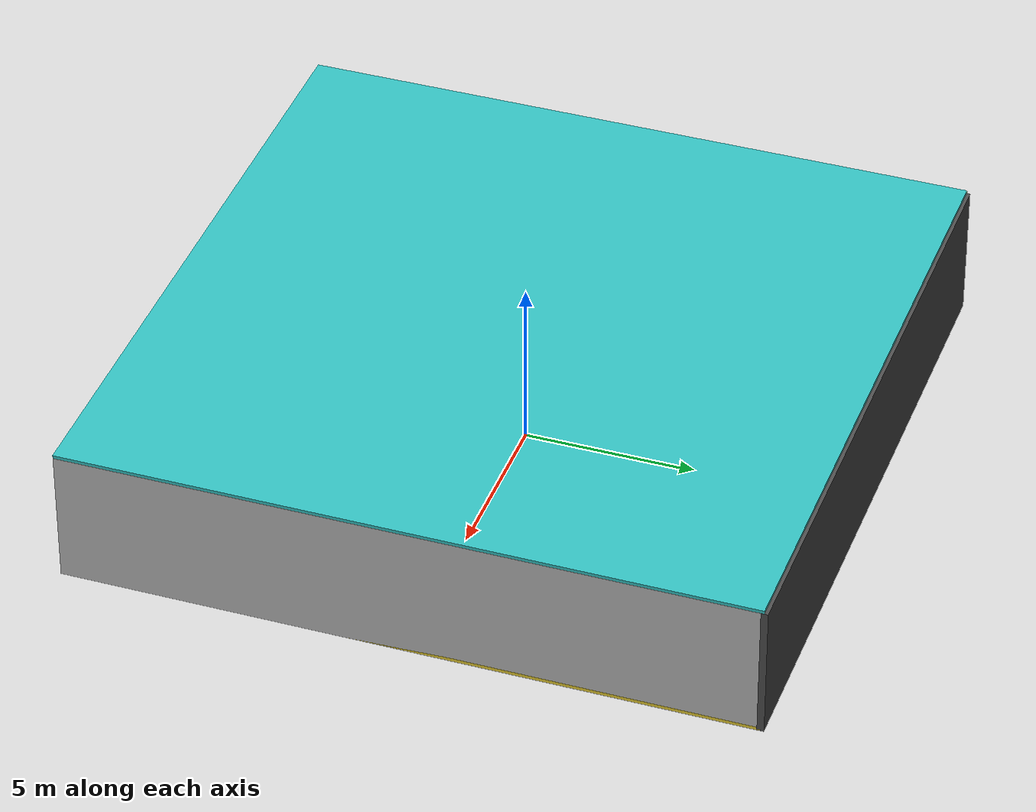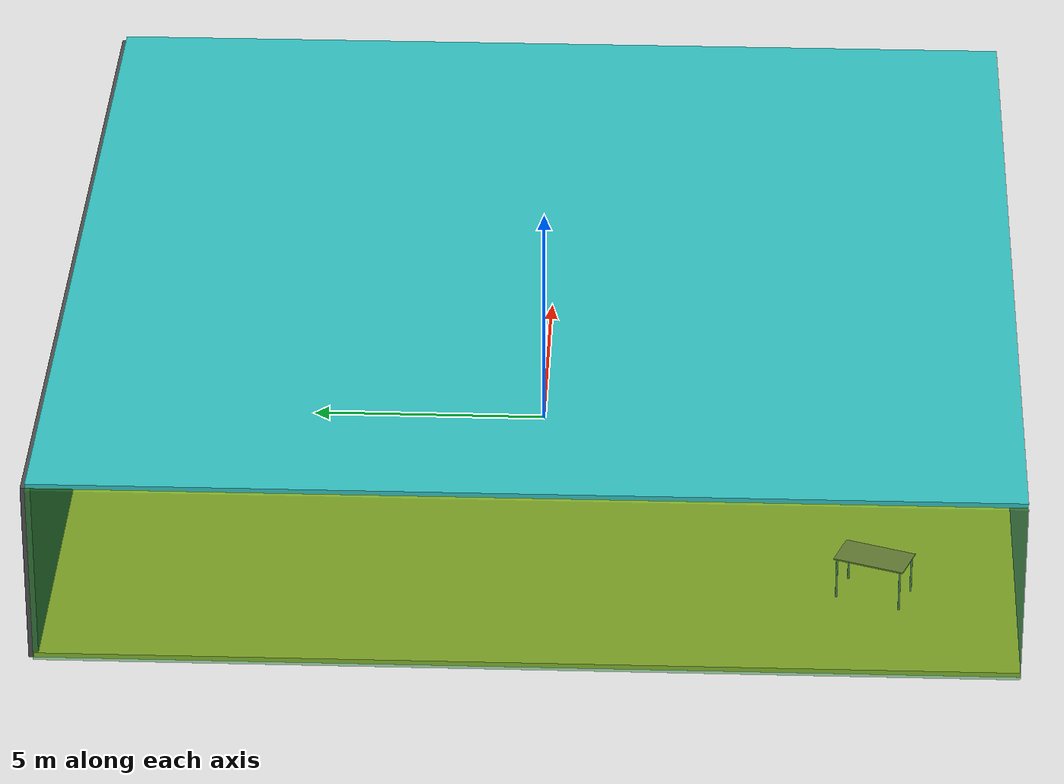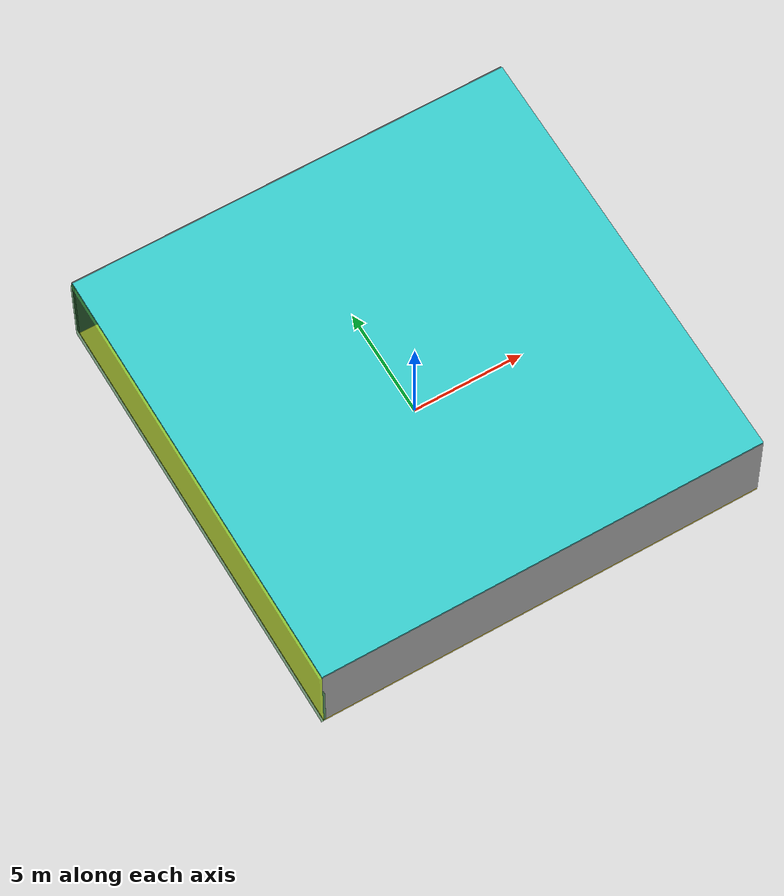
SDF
<sdf version="1.4">
 <world name="default">
  <physics type="ode">
   <max_step_size>0.001</max_step_size>
   <real_time_factor>1</real_time_factor>
   <real_time_update_rate>1000</real_time_update_rate>
   <gravity>0 0 -9.8</gravity>
  </physics>
  <scene><ambient>0.4 0.4 0.4 1</ambient><background>0.7 0.7 0.7 1</background><shadows>1</shadows></scene>
  <model name="Surrounding">
   <static>1</static>
   <link name="Ceiling">
    <collision name="Ceiling_Collision"><geometry><box><size>20 20 0.1</size></box></geometry></collision>
    <visual name="Ceiling_Visual">
     <geometry><box><size>20 20 0.1</size></box></geometry>
     <material>
      <script><uri>file://media/materials/scripts/gazebo.material</uri><name>Gazebo/TurquoiseGlow</name></script>
     </material>
    </visual>
    <pose>0 0 4.05 0 0 0</pose>
   </link>
   <link name="Wall_South">
    <collision name="Wall_South_Collision">
     <geometry><box><size>20 0 4</size></box></geometry>
     <pose>0 0 2 0 -0 0</pose>
    </collision>
    <visual name="Wall_South_Visual">
     <pose>0 0 2 0 -0 0</pose>
     <geometry><box><size>20 0 4</size></box></geometry>
     <material>
      <script><uri>file://media/materials/scripts/gazebo.material</uri><name>Gazebo/PioneerBody</name></script>
     </material>
    </visual>
    <velocity_decay><linear>0</linear><angular>0</angular></velocity_decay>
    <pose>0 -10 0 0 -0 0</pose>
   </link>
   <link name="Wall_East">
    <collision name="Wall_21_Collision">
     <geometry><box><size>20 0 4</size></box></geometry>
     <pose>0 0 2 0 -0 0</pose>
    </collision>
    <visual name="Wall_21_Visual">
     <pose>0 0 2 0 -0 0</pose>
     <geometry><box><size>20 0 4</size></box></geometry>
     <material>
      <script><uri>file://media/materials/scripts/gazebo.material</uri><name>Gazebo/Pioneer2Body</name></script>
     </material>
    </visual>
    <velocity_decay><linear>0</linear><angular>0</angular></velocity_decay>
    <pose>10 0 0 0 -0 1.5708</pose>
   </link>
   <link name="Wall_North">
    <collision name="Wall_22_Collision">
     <geometry><box><size>20 0.2 4</size></box></geometry>
     <pose>0 0 2 0 -0 0</pose>
    </collision>
    <visual name="Wall_22_Visual">
     <pose>0 0 2 0 -0 0</pose>
     <geometry><box><size>20 0.2 4</size></box></geometry>
     <material>
      <script><uri>file://media/materials/scripts/gazebo.material</uri><name>Gazebo/Road</name></script>
     </material>
    </visual>
    <velocity_decay><linear>0</linear><angular>0</angular></velocity_decay>
    <pose>0 10 0 0 -0 0</pose>
   </link>
   <link name="Wall_West">
    <collision name="Wall_23_Collision">
     <geometry><box><size>20 0.2 4</size></box></geometry>
     <pose>0 0 2 0 -0 0</pose>
    </collision>
    <visual name="Wall_23_Visual">
     <pose>0 0 2 0 -0 0</pose>
     <geometry><box><size>20 0.2 4</size></box></geometry>
     <material>
      <script><uri>file://media/materials/scripts/gazebo.material</uri><name>Gazebo/GreenTransparent</name></script>
     </material>
    </visual>
    <velocity_decay><linear>0</linear><angular>0</angular></velocity_decay>
    <pose>-10 0 0 0 0 -1.5708</pose>
   </link>
   <link name="Ground_link">
    <collision name="collision">
     <pose>0 0 .05 0 -0 0</pose>
     <geometry><box><size>20 20 0.1</size></box></geometry>
    </collision>
    <visual name="visual">
     <pose>0 0 .05 0 -0 0</pose>
     <geometry><box><size>20 20 0.1</size></box></geometry>
     <material>
      <script><uri>file://media/materials/scripts/gazebo.material</uri><name>Gazebo/ZincYellow</name></script>
     </material>
    </visual>
   </link>
   <static>1</static>
  </model>
  <spherical_coordinates>
   <surface_model>EARTH_WGS84</surface_model>
   <latitude_deg>0</latitude_deg>
   <longitude_deg>0</longitude_deg>
   <elevation>0</elevation>
   <heading_deg>0</heading_deg>
  </spherical_coordinates>
  <light name="lightball_0" type="diffuse">
   <diffuse>0.8 0.8 0.8 1</diffuse>
   <specular>0.2 0.2 0.2 1</specular>
   <attenuation>
    <range>100</range>
    <constant>0.7</constant>
    <linear>0.01</linear>
    <quadratic>0.001</quadratic>
   </attenuation>
   <direction>-0.5 0.1 -0.9</direction>
   <pose>7.81803932237 -5.09842643836 1.38527106336 0 0 0</pose>
  </light>
  <light name="lightball_1" type="diffuse">
   <diffuse>0.8 0.8 0.8 1</diffuse>
   <specular>0.2 0.2 0.2 1</specular>
   <attenuation>
    <range>100</range>
    <constant>0.7</constant>
    <linear>0.01</linear>
    <quadratic>0.001</quadratic>
   </attenuation>
   <direction>-0.5 0.1 -0.9</direction>
   <pose>-3.08875323624 6.60419614571 0.601638124583 0 0 0</pose>
  </light>
  <light name="lightball_2" type="diffuse">
   <diffuse>0.8 0.8 0.8 1</diffuse>
   <specular>0.2 0.2 0.2 1</specular>
   <attenuation>
    <range>100</range>
    <constant>0.7</constant>
    <linear>0.01</linear>
    <quadratic>0.001</quadratic>
   </attenuation>
   <direction>-0.5 0.1 -0.9</direction>
   <pose>4.01984529843 1.44461231947 3.6859811733 0 0 0</pose>
  </light>
  <light name="lightball_3" type="diffuse">
   <diffuse>0.8 0.8 0.8 1</diffuse>
   <specular>0.2 0.2 0.2 1</specular>
   <attenuation>
    <range>100</range>
    <constant>0.7</constant>
    <linear>0.01</linear>
    <quadratic>0.001</quadratic>
   </attenuation>
   <direction>-0.5 0.1 -0.9</direction>
   <pose>-2.67900214134 -0.39490717451 3.04893533059 0 0 0</pose>
  </light>
  <include><uri>model://table</uri><pose>-7.10605366026 -7.07065736316 0 0 0 1.22477535806</pose></include>
  <include>
   <uri>model://textured_shapes</uri>
   <pose>2.12757041132 -1.87949777296 0 0 0 2.87935297785</pose>
  </include>
  <include>
   <uri>model://construction_cone</uri>
   <pose>2.09125272291 1.01974146464 0 0 0 2.70642982854</pose>
  </include>
  <include>
   <uri>model://robocup_3Dsim_goal</uri>
   <pose>3.91734366343 7.58816915832 0 0 0 2.69964799827</pose>
  </include>
  <include>
   <uri>model://textured_shapes</uri>
   <pose>8.17379053346 1.80425583032 0 0 0 2.99411262132</pose>
  </include>
  <include><uri>model://cabinet</uri><pose>7.6343126562 7.15127769208 0 0 0 1.34991661026</pose></include>
 </world>
</sdf>

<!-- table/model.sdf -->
<sdf version="1.5">
  <model name="table">
    <static>true</static>
    <link name="link">
      <collision name="surface">
        <pose>0 0 1.0 0 0 0</pose>
        <geometry>
          <box>
            <size>1.5 0.8 0.03</size>
          </box>
        </geometry>
        <surface>
          <friction>
            <ode>
              <mu>0.6</mu>
              <mu2>0.6</mu2>
            </ode>
          </friction>
        </surface>
      </collision>
      <visual name="visual1">
        <pose>0 0 1.0 0 0 0</pose>
        <geometry>
          <box>
            <size>1.5 0.8 0.03</size>
          </box>
        </geometry>
        <material>
          <script>
            <uri>model://media/materials/scripts/gazebo.material</uri>
            <name>Gazebo/Wood</name>
          </script>
        </material>
      </visual>
      <collision name="front_left_leg">
        <pose>0.68 0.38 0.5 0 0 0</pose>
        <geometry>
          <cylinder>
            <radius>0.02</radius>
            <length>1.0</length>
          </cylinder>
        </geometry>
      </collision>
      <visual name="front_left_leg">
        <pose>0.68 0.38 0.5 0 0 0</pose>
        <geometry>
          <cylinder>
            <radius>0.02</radius>
            <length>1.0</length>
          </cylinder>
        </geometry>
        <material>
          <script>
            <uri>model://media/materials/scripts/gazebo.material</uri>
            <name>Gazebo/Grey</name>
          </script>
        </material>
      </visual>
      <collision name="front_right_leg">
        <pose>0.68 -0.38 0.5 0 0 0</pose>
        <geometry>
          <cylinder>
            <radius>0.02</radius>
            <length>1.0</length>
          </cylinder>
        </geometry>
      </collision>
      <visual name="front_right_leg">
        <pose>0.68 -0.38 0.5 0 0 0</pose>
        <geometry>
          <cylinder>
            <radius>0.02</radius>
            <length>1.0</length>
          </cylinder>
        </geometry>
        <material>
          <script>
            <uri>model://media/materials/scripts/gazebo.material</uri>
            <name>Gazebo/Grey</name>
          </script>
        </material>
      </visual>
      <collision name="back_right_leg">
        <pose>-0.68 -0.38 0.5 0 0 0</pose>
        <geometry>
          <cylinder>
            <radius>0.02</radius>
            <length>1.0</length>
          </cylinder>
        </geometry>
      </collision>
      <visual name="back_right_leg">
        <pose>-0.68 -0.38 0.5 0 0 0</pose>
        <geometry>
          <cylinder>
            <radius>0.02</radius>
            <length>1.0</length>
          </cylinder>
        </geometry>
        <material>
          <script>
            <uri>model://media/materials/scripts/gazebo.material</uri>
            <name>Gazebo/Grey</name>
          </script>
        </material>
      </visual>
      <collision name="back_left_leg">
        <pose>-0.68 0.38 0.5 0 0 0</pose>
        <geometry>
          <cylinder>
            <radius>0.02</radius>
            <length>1.0</length>
          </cylinder>
        </geometry>
      </collision>
      <visual name="back_left_leg">
        <pose>-0.68 0.38 0.5 0 0 0</pose>
        <geometry>
          <cylinder>
            <radius>0.02</radius>
            <length>1.0</length>
          </cylinder>
        </geometry>
        <material>
          <script>
            <uri>model://media/materials/scripts/gazebo.material</uri>
            <name>Gazebo/Grey</name>
          </script>
        </material>
      </visual>
    </link>
  </model>
</sdf>

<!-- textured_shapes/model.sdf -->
<sdf version="1.6">
  <model name="textured_shapes">
    <pose>0 0 0.5 0 0 0</pose>
    <link name="box">
      <pose>0 -1.5 0 0 0 0</pose>
      <collision name="collision">
        <geometry>
          <box>
            <size>1 1 1</size>
          </box>
        </geometry>
      </collision>
      <visual name="visual">
        <geometry>
          <box>
            <size>1 1 1</size>
          </box>
        </geometry>
        <material>
          <script>
            <uri>model://../model_source/models/textured_shapes/materials/scripts</uri>
            <uri>model://../model_source/models/textured_shapes/materials/textures</uri>
            <name>TexturedShape/Squares</name>
          </script>
        </material>
      </visual>
    </link>
    <link name="sphere">
      <collision name="collision">
        <geometry>
          <sphere>
            <radius>0.5</radius>
          </sphere>
        </geometry>
      </collision>
      <visual name="visual">
        <geometry>
          <sphere>
            <radius>0.5</radius>
          </sphere>
        </geometry>
        <material>
          <script>
            <uri>model://../model_source/models/textured_shapes/materials/scripts</uri>
            <uri>model://../model_source/models/textured_shapes/materials/textures</uri>
            <name>TexturedShape/Squares</name>
          </script>
        </material>
      </visual>
    </link>
    <link name="cylinder">
      <pose>0 1.5 0 0 0 0</pose>
      <collision name="collision">
        <geometry>
          <cylinder>
            <radius>0.5</radius>
            <length>1</length>
          </cylinder>
        </geometry>
      </collision>
      <visual name="visual">
        <geometry>
          <cylinder>
            <radius>0.5</radius>
            <length>1</length>
          </cylinder>
        </geometry>
        <material>
          <script>
            <uri>model://../model_source/models/textured_shapes/materials/scripts</uri>
            <uri>model://../model_source/models/textured_shapes/materials/textures</uri>
            <name>TexturedShape/Squares</name>
          </script>
        </material>
      </visual>
    </link>
  </model>
</sdf>

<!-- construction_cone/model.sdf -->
<sdf version="1.5">
  <model name="Construction Cone">
    <link name="link">
      <collision name="collision">
        <geometry>
          <mesh>
            <scale>10 10 10</scale>
            <uri>file://isr-testbed/construction_cone/meshes/construction_cone.dae</uri>
          </mesh>
        </geometry>
      </collision>
      <visual name="visual">
        <geometry>
          <mesh>
            <scale>10 10 10</scale>
            <uri>file://isr-testbed/construction_cone/meshes/construction_cone.dae</uri>
          </mesh>
        </geometry>
      </visual>
    </link>
  </model>
</sdf>

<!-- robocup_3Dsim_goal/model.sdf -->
<sdf version="1.5">
  <model name="robocup_3d_goal">
    <static>true</static>
    <link name="left_post">
      <pose>0 1.05 0.45 0 0 0</pose>
      <collision name="collision">
        <geometry>
          <cylinder>
            <radius>0.05</radius>
            <length>0.9</length>
          </cylinder>
        </geometry>
      </collision>
      <visual name="visual">
        <geometry>
          <cylinder>
            <radius>0.05</radius>
            <length>0.9</length>
          </cylinder>
        </geometry>
        <material>
          <script>
            <uri>file://media/materials/scripts/gazebo.material</uri>
            <name>Gazebo/ZincYellow</name>
          </script>
        </material>
      </visual>
    </link>
    <link name="left_support_horiz_lower">
      <pose>0.30 1.05 0.01 0 0 0</pose>
      <collision name="collision">
        <geometry>
          <box>
            <size>0.50 0.02 0.02</size>
          </box>
        </geometry>
      </collision>
      <visual name="visual">
        <geometry>
          <box>
            <size>0.50 0.02 0.02</size>
          </box>
        </geometry>
        <material>
          <script>
            <uri>file://media/materials/scripts/gazebo.material</uri>
            <name>Gazebo/White</name>
          </script>
        </material>
      </visual>
    </link>
    <link name="left_support_horiz_upper">
      <pose>0.30 1.05 0.79 0 0 0</pose>
      <collision name="collision">
        <geometry>
          <box>
            <size>0.50 0.02 0.02</size>
          </box>
        </geometry>
      </collision>
      <visual name="visual">
        <geometry>
          <box>
            <size>0.50 0.02 0.02</size>
          </box>
        </geometry>
        <material>
          <script>
            <uri>file://media/materials/scripts/gazebo.material</uri>
            <name>Gazebo/White</name>
          </script>
        </material>
      </visual>
    </link>
    <link name="left_support_vertical">
      <pose>0.56 1.05 0.4 0 1.5708 0</pose>
      <collision name="collision">
        <geometry>
          <box>
            <size>0.80 0.02 0.02</size>
          </box>
        </geometry>
      </collision>
      <visual name="visual">
        <geometry>
          <box>
            <size>0.80 0.02 0.02</size>
          </box>
        </geometry>
        <material>
          <script>
            <uri>file://media/materials/scripts/gazebo.material</uri>
            <name>Gazebo/White</name>
          </script>
        </material>
      </visual>
    </link>
    <link name="right_support_horiz_lower">
      <pose>0.30 -1.05 0.01 0 0 0</pose>
      <collision name="collision">
        <geometry>
          <box>
            <size>0.50 0.02 0.02</size>
          </box>
        </geometry>
      </collision>
      <visual name="visual">
        <geometry>
          <box>
            <size>0.50 0.02 0.02</size>
          </box>
        </geometry>
        <material>
          <script>
            <uri>file://media/materials/scripts/gazebo.material</uri>
            <name>Gazebo/White</name>
          </script>
        </material>
      </visual>
    </link>
    <link name="right_support_horiz_upper">
      <pose>0.30 -1.05 0.79 0 0 0</pose>
      <collision name="collision">
        <geometry>
          <box>
            <size>0.50 0.02 0.02</size>
          </box>
        </geometry>
      </collision>
      <visual name="visual">
        <geometry>
          <box>
            <size>0.50 0.02 0.02</size>
          </box>
        </geometry>
        <material>
          <script>
            <uri>file://media/materials/scripts/gazebo.material</uri>
            <name>Gazebo/White</name>
          </script>
        </material>
      </visual>
    </link>
    <link name="right_support_vertical">
      <pose>0.56 -1.05 0.4 0 1.5708 0</pose>
      <collision name="collision">
        <geometry>
          <box>
            <size>0.80 0.02 0.02</size>
          </box>
        </geometry>
      </collision>
      <visual name="visual">
        <geometry>
          <box>
            <size>0.80 0.02 0.02</size>
          </box>
        </geometry>
        <material>
          <script>
            <uri>file://media/materials/scripts/gazebo.material</uri>
            <name>Gazebo/White</name>
          </script>
        </material>
      </visual>
    </link>
    <link name="center_support_horiz_lower">
      <pose>0.56 0 0.01 0 1.5708 0</pose>
      <collision name="collision">
        <geometry>
          <box>
            <size>0.02 2.08 0.02</size>
          </box>
        </geometry>
      </collision>
      <visual name="visual">
        <geometry>
          <box>
            <size>0.02 2.08 0.02</size>
          </box>
        </geometry>
        <material>
          <script>
            <uri>file://media/materials/scripts/gazebo.material</uri>
            <name>Gazebo/White</name>
          </script>
        </material>
      </visual>
    </link>
    <link name="center_support_horiz_upper">
      <pose>0.56 0 0.79 0 1.5708 0</pose>
      <collision name="collision">
        <geometry>
          <box>
            <size>0.02 2.08 0.02</size>
          </box>
        </geometry>
      </collision>
      <visual name="visual">
        <geometry>
          <box>
            <size>0.02 2.08 0.02</size>
          </box>
        </geometry>
        <material>
          <script>
            <uri>file://media/materials/scripts/gazebo.material</uri>
            <name>Gazebo/White</name>
          </script>
        </material>
      </visual>
    </link>
    <link name="right_post">
      <pose>0 -1.05 0.45 0 0 0</pose>
      <collision name="collision">
        <geometry>
          <cylinder>
            <radius>0.05</radius>
            <length>0.9</length>
          </cylinder>
        </geometry>
      </collision>
      <visual name="visual">
        <geometry>
          <cylinder>
            <radius>0.05</radius>
            <length>0.9</length>
          </cylinder>
        </geometry>
        <material>
          <script>
            <uri>file://media/materials/scripts/gazebo.material</uri>
            <name>Gazebo/ZincYellow</name>
          </script>
        </material>
      </visual>
    </link>
    <link name="crossbar">
      <pose>0 0 0.85 1.57 1.57 0</pose>
      <collision name="collision">
        <geometry>
          <cylinder>
            <radius>0.05</radius>
            <length>2.0</length>
          </cylinder>
        </geometry>
      </collision>
      <visual name="visual">
        <geometry>
          <cylinder>
            <radius>0.05</radius>
            <length>2.0</length>
          </cylinder>
        </geometry>
        <material>
          <script>
            <uri>file://media/materials/scripts/gazebo.material</uri>
            <name>Gazebo/ZincYellow</name>
          </script>
        </material>
      </visual>
    </link>
    <link name="center_net">
      <pose>0.56 0 0.40 0 0 0</pose>
      <collision name="collision">
        <geometry>
          <box>
            <size>0.01 2.1 0.80</size>
          </box>
        </geometry>
      </collision>
      <visual name="visual">
        <geometry>
          <box>
            <size>0.01 2.1 0.80</size>
          </box>
        </geometry>
        <material>
          <script>
            <uri>model://../model_source/models/robocup09_spl_field/materials/scripts/</uri>
            <uri>model://../model_source/models/robocup09_spl_field/materials/textures/</uri>
            <name>RoboCup/Net</name>
          </script>
        </material>
      </visual>
    </link>
    <link name="left_net">
      <pose>0.30 1.05 0.40 0 0 0</pose>
      <collision name="collision">
        <geometry>
          <box>
            <size>0.50 0.01 0.76</size>
          </box>
        </geometry>
      </collision>
      <visual name="visual">
        <geometry>
          <box>
            <size>0.50 0.01 0.76</size>
          </box>
        </geometry>
        <material>
          <script>
            <uri>model://../model_source/models/robocup09_spl_field/materials/scripts/</uri>
            <uri>model://../model_source/models/robocup09_spl_field/materials/textures/</uri>
            <name>RoboCup/Net</name>
          </script>
        </material>
      </visual>
    </link>
    <link name="right_net">
      <pose>0.30 -1.05 0.40 0 0 0</pose>
      <collision name="collision">
        <geometry>
          <box>
            <size>0.50 0.01 0.76</size>
          </box>
        </geometry>
      </collision>
      <visual name="visual">
        <geometry>
          <box>
            <size>0.50 0.01 0.76</size>
          </box>
        </geometry>
        <material>
          <script>
            <uri>model://../model_source/models/robocup09_spl_field/materials/scripts/</uri>
            <uri>model://../model_source/models/robocup09_spl_field/materials/textures/</uri>
            <name>RoboCup/Net</name>
          </script>
        </material>
      </visual>
    </link>
  </model>
</sdf>

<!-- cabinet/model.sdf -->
<sdf version="1.5">
  <model name="cabinet">
    <static>true</static>
    <link name="cabinet_bottom_plate">
      <inertial>
        <pose>0 0 -1 0 0 0</pose>
        <inertia>
          <ixx>2.050000</ixx>
          <ixy>0</ixy>
          <ixz>0</ixz>
          <iyy>2.050000</iyy>
          <iyz>0</iyz>
          <izz>2.050000</izz>
        </inertia>
        <mass>25.000000</mass>
      </inertial>
      <collision name="cabinet_bottom_plate_geom">
        <pose>0 0 0.010000 0 0 0</pose>
        <geometry>
          <box>
            <size>0.450000 0.450000 0.020000</size>
          </box>
        </geometry>
      </collision>
      <visual name="cabinet_bottom_plate_geom_visual">
        <pose>0 0 0.010000 0 0 0</pose>
        <geometry>
          <box>
            <size>0.450000 0.450000 0.020000</size>
          </box>
        </geometry>
        <material>
          <script>
            <uri>model://media/materials/scripts/gazebo.material</uri>
            <name>Gazebo/Wood</name>
          </script>
        </material>
      </visual>
      <collision name="cabinet_bottom_plate_geom_cabinet_back_plate">
        <pose>0.235000 0 0.510000 0 0 0</pose>
        <geometry>
          <box>
            <size>0.020000 0.450000 1.020000</size>
          </box>
        </geometry>
      </collision>
      <visual name="cabinet_bottom_plate_geom_cabinet_back_plate_visual">
        <pose>0.235000 0 0.510000 0 0 0</pose>
        <geometry>
          <box>
            <size>0.020000 0.450000 1.020000</size>
          </box>
        </geometry>
        <material>
          <script>
            <uri>model://media/materials/scripts/gazebo.material</uri>
            <name>Gazebo/Wood</name>
          </script>
        </material>
      </visual>
      <collision name="cabinet_bottom_plate_geom_cabinet_left_plate">
        <pose>0 0.235000 0.510000 0 0 0</pose>
        <geometry>
          <box>
            <size>0.450000 0.020000 1.020000</size>
          </box>
        </geometry>
      </collision>
      <visual name="cabinet_bottom_plate_geom_cabinet_left_plate_visual">
        <pose>0 0.235000 0.510000 0 0 0</pose>
        <geometry>
          <box>
            <size>0.450000 0.020000 1.020000</size>
          </box>
        </geometry>
        <material>
          <script>
            <uri>model://media/materials/scripts/gazebo.material</uri>
            <name>Gazebo/Wood</name>
          </script>
        </material>
      </visual>
      <collision name="cabinet_bottom_plate_geom_cabinet_middle_plate">
        <pose>0 0 0.510000 0 0 0</pose>
        <geometry>
          <box>
            <size>0.450000 0.450000 0.020000</size>
          </box>
        </geometry>
      </collision>
      <visual name="cabinet_bottom_plate_geom_cabinet_middle_plate_visual">
        <pose>0 0 0.510000 0 0 0</pose>
        <geometry>
          <box>
            <size>0.450000 0.450000 0.020000</size>
          </box>
        </geometry>
        <material>
          <script>
            <uri>model://media/materials/scripts/gazebo.material</uri>
            <name>Gazebo/Wood</name>
          </script>
        </material>
      </visual>
      <collision name="cabinet_bottom_plate_geom_cabinet_right_plate">
        <pose>0 -0.235000 0.510000 0 0 0</pose>
        <geometry>
          <box>
            <size>0.450000 0.020000 1.020000</size>
          </box>
        </geometry>
      </collision>
      <visual name="cabinet_bottom_plate_geom_cabinet_right_plate_visual">
        <pose>0 -0.235000 0.510000 0 0 0</pose>
        <geometry>
          <box>
            <size>0.450000 0.020000 1.020000</size>
          </box>
        </geometry>
        <material>
          <script>
            <uri>model://media/materials/scripts/gazebo.material</uri>
            <name>Gazebo/Wood</name>
          </script>
        </material>
      </visual>
      <collision name="cabinet_bottom_plate_geom_cabinet_top_plate">
        <pose>0 0 1.010000 0 0 0</pose>
        <geometry>
          <box>
            <size>0.450000 0.450000 0.020000</size>
          </box>
        </geometry>
      </collision>
      <visual name="cabinet_bottom_plate_geom_cabinet_top_plate_visual">
        <pose>0 0 1.010000 0 0 0</pose>
        <geometry>
          <box>
            <size>0.450000 0.450000 0.020000</size>
          </box>
        </geometry>
        <material>
          <script>
            <uri>model://media/materials/scripts/gazebo.material</uri>
            <name>Gazebo/Wood</name>
          </script>
        </material>
      </visual>
    </link>
  </model>
</sdf>
